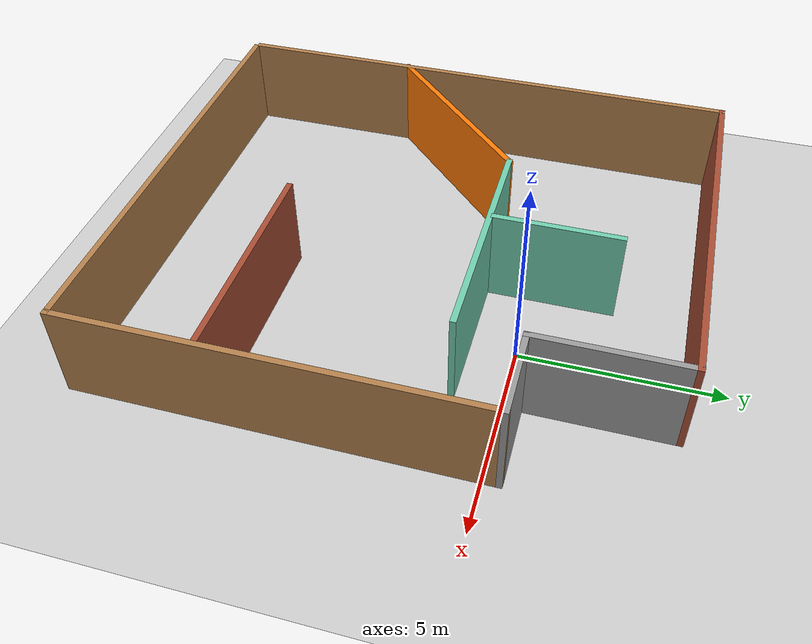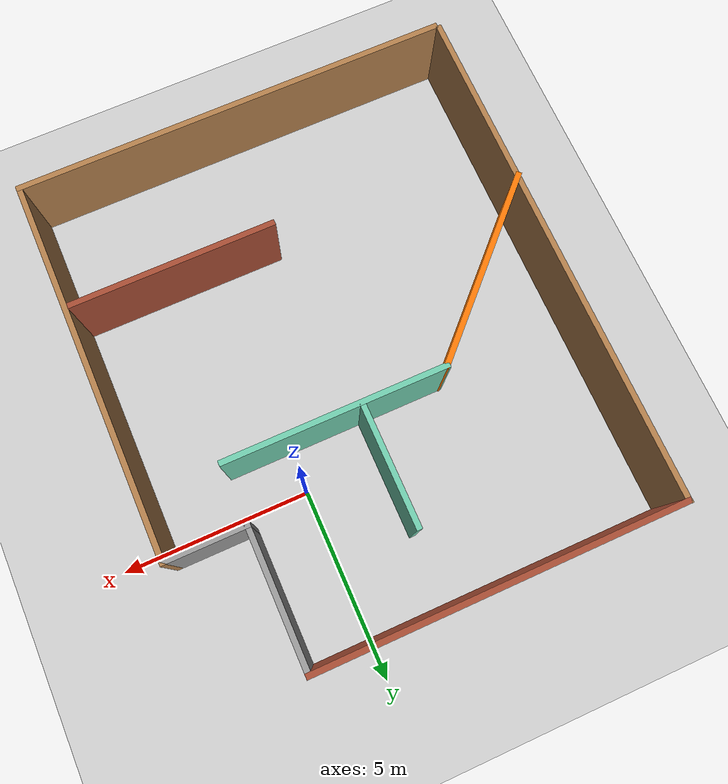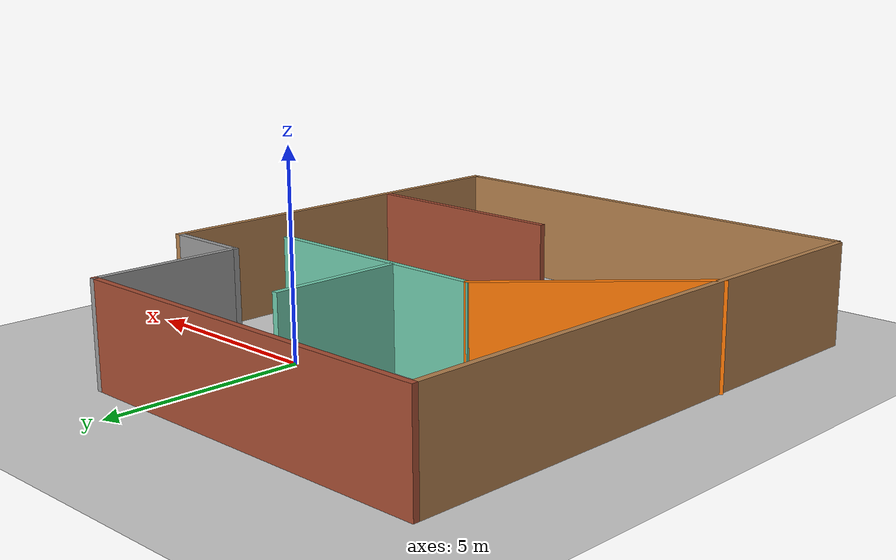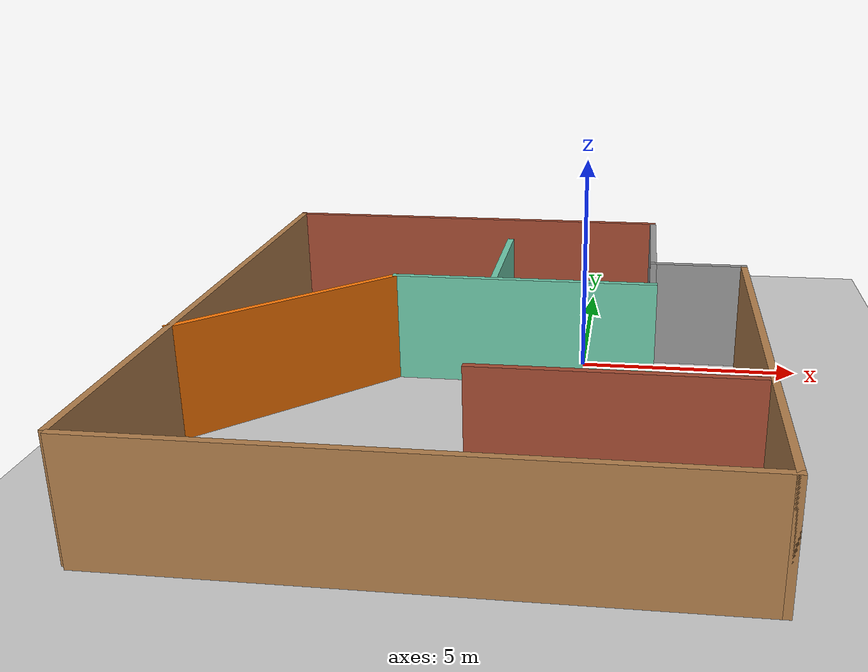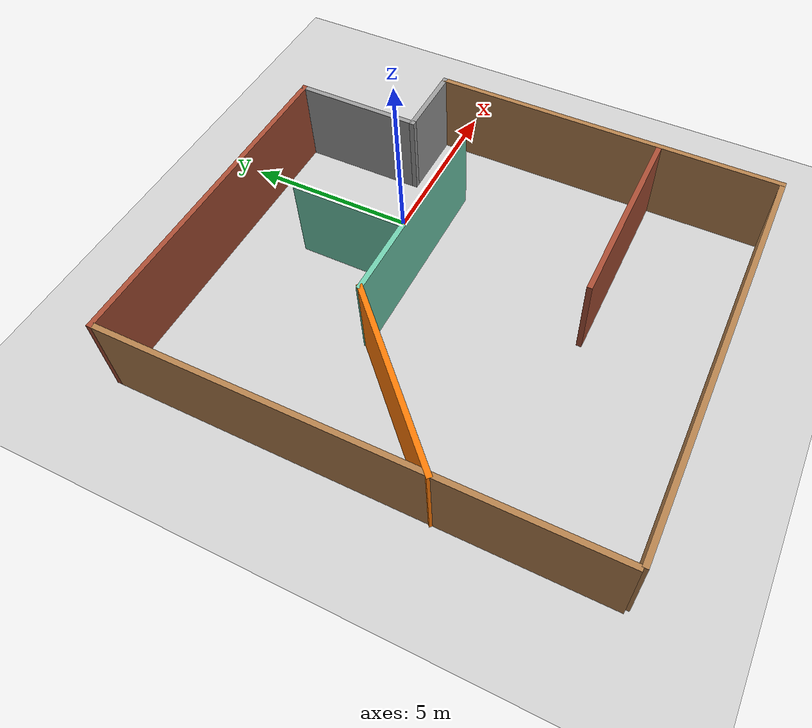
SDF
<sdf version="1.6">
 <world name="default">
  <light name="sun" type="directional">
   <pose>0 0 10 0 -0 0</pose>
   <diffuse>0.8 0.8 0.8 1</diffuse>
   <specular>0.2 0.2 0.2 1</specular>
   <attenuation>
    <range>1000</range>
    <constant>0.9</constant>
    <linear>0.01</linear>
    <quadratic>0.001</quadratic>
   </attenuation>
   <direction>-0.5 0.1 -0.9</direction>
  </light>
  <model name="ground_plane">
   <static>1</static>
   <link name="link">
    <collision name="collision">
     <geometry><plane><normal>0 0 1</normal><size>100 100</size></plane></geometry>
     <surface><friction><ode><mu>100</mu><mu2>50</mu2></ode></friction></surface>
    </collision>
    <visual name="visual">
     <cast_shadows>0</cast_shadows>
     <geometry><plane><normal>0 0 1</normal><size>100 100</size></plane></geometry>
     <material>
      <script><uri>file://media/materials/scripts/gazebo.material</uri><name>Gazebo/Grey</name></script>
     </material>
    </visual>
   </link>
  </model>
  <gravity>0 0 -9.8</gravity>
  <magnetic_field>6e-06 2.3e-05 -4.2e-05</magnetic_field>
  <atmosphere type="adiabatic"/>
  <physics name="default_physics" default="0" type="ode">
   <max_step_size>0.001</max_step_size>
   <real_time_factor>1</real_time_factor>
   <real_time_update_rate>1000</real_time_update_rate>
  </physics>
  <scene><ambient>0.4 0.4 0.4 1</ambient><background>0.7 0.7 0.7 1</background><shadows>1</shadows></scene>
  <spherical_coordinates>
   <surface_model>EARTH_WGS84</surface_model>
   <latitude_deg>0</latitude_deg>
   <longitude_deg>0</longitude_deg>
   <elevation>0</elevation>
   <heading_deg>0</heading_deg>
  </spherical_coordinates>
  <model name="Untitled3">
   <pose>-2.19885 -2.84993 0 0 -0 0</pose>
   <link name="Wall_11">
    <collision name="Wall_11_Collision">
     <geometry><box><size>5.5 0.15 2.5</size></box></geometry>
     <pose>0 0 1.25 0 -0 0</pose>
    </collision>
    <visual name="Wall_11_Visual">
     <pose>0 0 1.25 0 -0 0</pose>
     <geometry><box><size>5.5 0.15 2.5</size></box></geometry>
     <material>
      <script><uri>file://media/materials/scripts/gazebo.material</uri><name>Gazebo/Bricks</name></script>
      <ambient>1 1 1 1</ambient>
     </material>
     <meta><layer>0</layer></meta>
    </visual>
    <pose>3.05769 -3.40693 0 0 -0 0</pose>
   </link>
   <link name="Wall_14">
    <collision name="Wall_14_Collision">
     <geometry><box><size>5.5 0.15 2.5</size></box></geometry>
     <pose>0 0 1.25 0 -0 0</pose>
    </collision>
    <visual name="Wall_14_Visual">
     <pose>0 0 1.25 0 -0 0</pose>
     <geometry><box><size>5.5 0.15 2.5</size></box></geometry>
     <material>
      <script><uri>file://media/materials/scripts/gazebo.material</uri><name>Gazebo/Grey</name></script>
      <ambient>0.996078 0.47451 0.0196078 1</ambient>
     </material>
     <meta><layer>0</layer></meta>
    </visual>
    <pose>-3.95595 -0.220842 0 0 -0 0.785398</pose>
   </link>
   <link name="Wall_15">
    <collision name="Wall_15_Collision">
     <geometry><box><size>6 0.15 2.5</size></box></geometry>
     <pose>0 0 1.25 0 -0 0</pose>
    </collision>
    <visual name="Wall_15_Visual">
     <pose>0 0 1.25 0 -0 0</pose>
     <geometry><box><size>6 0.15 2.5</size></box></geometry>
     <material>
      <script><uri>file://media/materials/scripts/gazebo.material</uri><name>Gazebo/Grey</name></script>
      <ambient>0.435294 0.796078 0.67451 1</ambient>
     </material>
     <meta><layer>0</layer></meta>
    </visual>
    <pose>0.860557 1.67067 0 0 -0 0</pose>
   </link>
   <link name="Wall_17">
    <collision name="Wall_17_Collision">
     <geometry><box><size>3.25 0.15 2.5</size></box></geometry>
     <pose>0 0 1.25 0 -0 0</pose>
    </collision>
    <visual name="Wall_17_Visual">
     <pose>0 0 1.25 0 -0 0</pose>
     <geometry><box><size>3.25 0.15 2.5</size></box></geometry>
     <material>
      <script><uri>file://media/materials/scripts/gazebo.material</uri><name>Gazebo/Grey</name></script>
      <ambient>0.435294 0.796078 0.67451 1</ambient>
     </material>
     <meta><layer>0</layer></meta>
    </visual>
    <pose>0.180416 3.32138 0 0 -0 1.5708</pose>
   </link>
   <link name="Wall_4">
    <collision name="Wall_4_Collision">
     <geometry><box><size>11.75 0.15 2.5</size></box></geometry>
     <pose>0 0 1.25 0 -0 0</pose>
    </collision>
    <visual name="Wall_4_Visual">
     <pose>0 0 1.25 0 -0 0</pose>
     <geometry><box><size>11.75 0.15 2.5</size></box></geometry>
     <material>
      <script><uri>file://media/materials/scripts/gazebo.material</uri><name>Gazebo/Wood</name></script>
      <ambient>1 1 1 1</ambient>
     </material>
     <meta><layer>0</layer></meta>
    </visual>
    <pose>0.07853 -6.85 0 0 -0 0</pose>
   </link>
   <link name="Wall_5">
    <collision name="Wall_5_Collision">
     <geometry><box><size>10.25 0.15 2.5</size></box></geometry>
     <pose>0 0 1.25 0 -0 0</pose>
    </collision>
    <visual name="Wall_5_Visual">
     <pose>0 0 1.25 0 -0 0</pose>
     <geometry><box><size>10.25 0.15 2.5</size></box></geometry>
     <material>
      <script><uri>file://media/materials/scripts/gazebo.material</uri><name>Gazebo/Wood</name></script>
      <ambient>1 1 1 1</ambient>
     </material>
     <meta><layer>0</layer></meta>
    </visual>
    <pose>5.87853 -1.8 0 0 -0 1.5708</pose>
   </link>
   <link name="Wall_6">
    <collision name="Wall_6_Collision">
     <geometry><box><size>2.25 0.15 2.5</size></box></geometry>
     <pose>0 0 1.25 0 -0 0</pose>
    </collision>
    <visual name="Wall_6_Visual">
     <pose>0 0 1.25 0 -0 0</pose>
     <geometry><box><size>2.25 0.15 2.5</size></box></geometry>
     <material>
      <script><uri>file://media/materials/scripts/gazebo.material</uri><name>Gazebo/Grey</name></script>
      <ambient>1 1 1 1</ambient>
     </material>
     <meta><layer>0</layer></meta>
    </visual>
    <pose>4.82853 3.25 0 0 -0 3.14159</pose>
   </link>
   <link name="Wall_7">
    <collision name="Wall_7_Collision">
     <geometry><box><size>3.75 0.15 2.5</size></box></geometry>
     <pose>0 0 1.25 0 -0 0</pose>
    </collision>
    <visual name="Wall_7_Visual">
     <pose>0 0 1.25 0 -0 0</pose>
     <geometry><box><size>3.75 0.15 2.5</size></box></geometry>
     <material>
      <script><uri>file://media/materials/scripts/gazebo.material</uri><name>Gazebo/Grey</name></script>
      <ambient>1 1 1 1</ambient>
     </material>
     <meta><layer>0</layer></meta>
    </visual>
    <pose>3.77853 5.05 0 0 -0 1.5708</pose>
   </link>
   <link name="Wall_8">
    <collision name="Wall_8_Collision">
     <geometry><box><size>9.75 0.15 2.5</size></box></geometry>
     <pose>0 0 1.25 0 -0 0</pose>
    </collision>
    <visual name="Wall_8_Visual">
     <pose>0 0 1.25 0 -0 0</pose>
     <geometry><box><size>9.75 0.15 2.5</size></box></geometry>
     <material>
      <script><uri>file://media/materials/scripts/gazebo.material</uri><name>Gazebo/Bricks</name></script>
      <ambient>1 1 1 1</ambient>
     </material>
     <meta><layer>0</layer></meta>
    </visual>
    <pose>-1.02147 6.85 0 0 -0 3.14159</pose>
   </link>
   <link name="Wall_9">
    <collision name="Wall_9_Collision">
     <geometry><box><size>13.75 0.15 2.5</size></box></geometry>
     <pose>0 0 1.25 0 -0 0</pose>
    </collision>
    <visual name="Wall_9_Visual">
     <pose>0 0 1.25 0 -0 0</pose>
     <geometry><box><size>13.75 0.15 2.5</size></box></geometry>
     <material>
      <script><uri>file://media/materials/scripts/gazebo.material</uri><name>Gazebo/Wood</name></script>
      <ambient>1 1 1 1</ambient>
     </material>
     <meta><layer>0</layer></meta>
    </visual>
    <pose>-5.82147 0.049999 0 0 0 -1.5708</pose>
   </link>
   <static>1</static>
  </model>
 </world>
</sdf>
